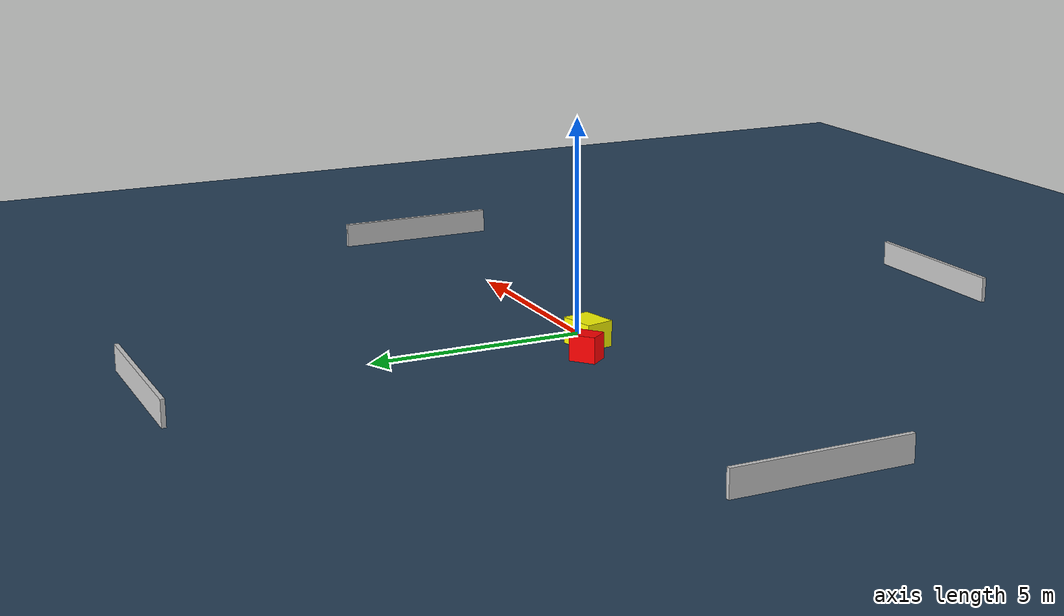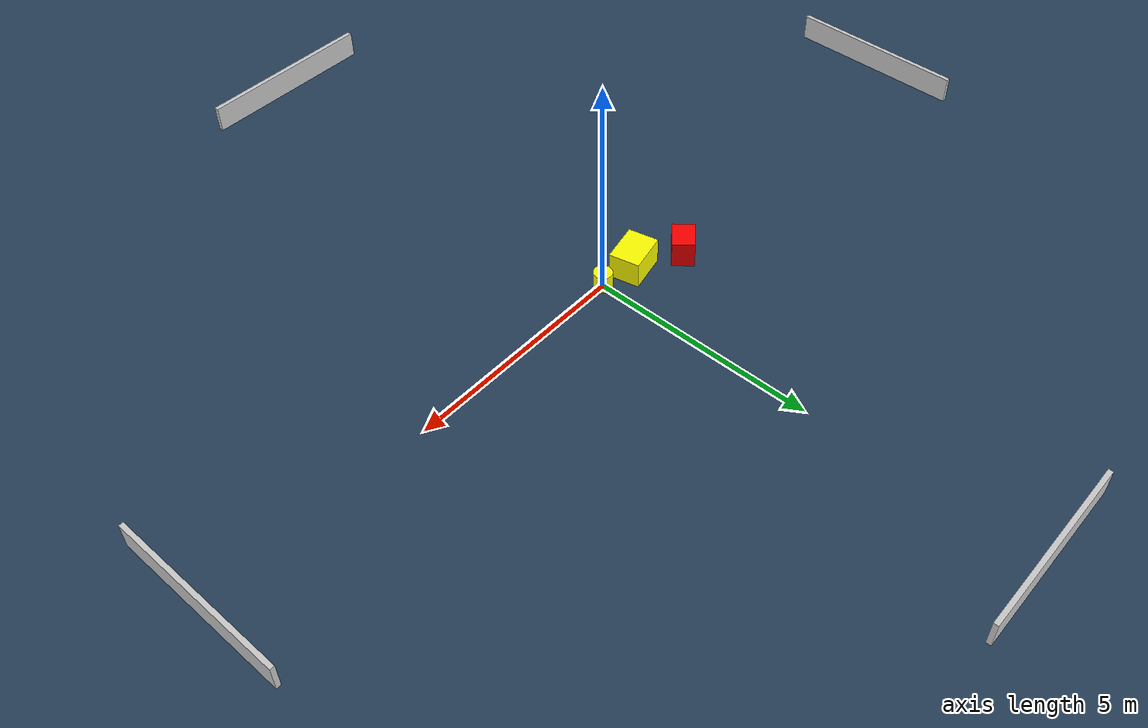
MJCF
<?xml version="1.0" ?>
<mujoco model="generated_environment">
  <option timestep="0.01" integrator="RK4" cone="elliptic"/>
  <default>
    <geom density="1"/>
  </default>
  <asset>
    <texture builtin="gradient" height="3072" name="skybox" rgb1="0.3 0.5 0.7" rgb2="0 0 0" type="skybox" width="512"/>
    <texture builtin="checker" height="300" name="groundplane" rgb1="0.2 0.3 0.4" rgb2="0.1 0.2 0.3" type="2d" width="300"/>
    <material name="groundplane" reflectance="0.2" texrepeat="5 5" texture="groundplane"/>
  </asset>
  <worldbody>
    <light dir="0 0 -1" directional="true" pos="0 0 1.5"/>
    <geom condim="3" friction="0.5 0.005 0.001" material="groundplane" name="floor" pos="0 0 0" size="0 0 0.05" type="plane"/>
    <body name="walls">
      <geom name="wall_1" condim="4" pos="-10.0 0.0 0.3" rgba="0.800000011920929 0.800000011920929 0.800000011920929 1.0" size="0.05 2.0 0.3" type="box"/>
      <geom name="wall_2" condim="4" pos="10.0 0.0 0.3" rgba="0.800000011920929 0.800000011920929 0.800000011920929 1.0" size="0.05 2.0 0.3" type="box"/>
      <geom name="wall_3" condim="4" pos="0.0 -10.0 0.3" rgba="0.800000011920929 0.800000011920929 0.800000011920929 1.0" size="2.0 0.05 0.3" type="box"/>
      <geom name="wall_4" condim="4" pos="0.0 10.0 0.3" rgba="0.800000011920929 0.800000011920929 0.800000011920929 1.0" size="2.0 0.05 0.3" type="box"/>
    </body>
    <body name="robot">
      <joint name="joint_x" type="slide" pos="0 0 0" axis="1 0 0"/>
      <joint name="joint_y" type="slide" pos="0 0 0" axis="0 1 0"/>
      <geom name="robot" type="cylinder" pos="0.0 0.0 0.2" size="0.2 0.2 0.0" mass="5.0" friction="1.0 0.005 0.0001" condim="4" rgba="1.0 1.0 0.0 1.0"/>
    </body>
    <body name="obstacle_1_movable">
      <geom name="obstacle_1_movable" condim="4" pos="-0.8032416747627212 0.13210022822829628 0.3" euler="0 0 192.65405182312315" friction="0.0 0.005 0.001" rgba="1.0 1.0 0.0 1.0" size="0.43591823439822164 0.3348939154295919 0.3" type="box" mass="0.1"/>
      <joint type="free"/>
    </body>
    <body name="obstacle_2_static">
      <geom name="obstacle_2_static" condim="4" pos="-1.7717566841835333 0.6560933994083481 0.3" euler="0 0 38.98424443968385" friction="0.0 0.005 0.001" rgba="1.0 0.0 0.0 1.0" size="0.3107667434270921 0.24353754815717438 0.3" type="box"/>
    </body>
  </worldbody>
  <actuator>
    <motor name="actuator_x" joint="joint_x" gear="1" ctrlrange="-1 1"/>
    <motor name="actuator_y" joint="joint_y" gear="1" ctrlrange="-1 1"/>
  </actuator>
</mujoco>
